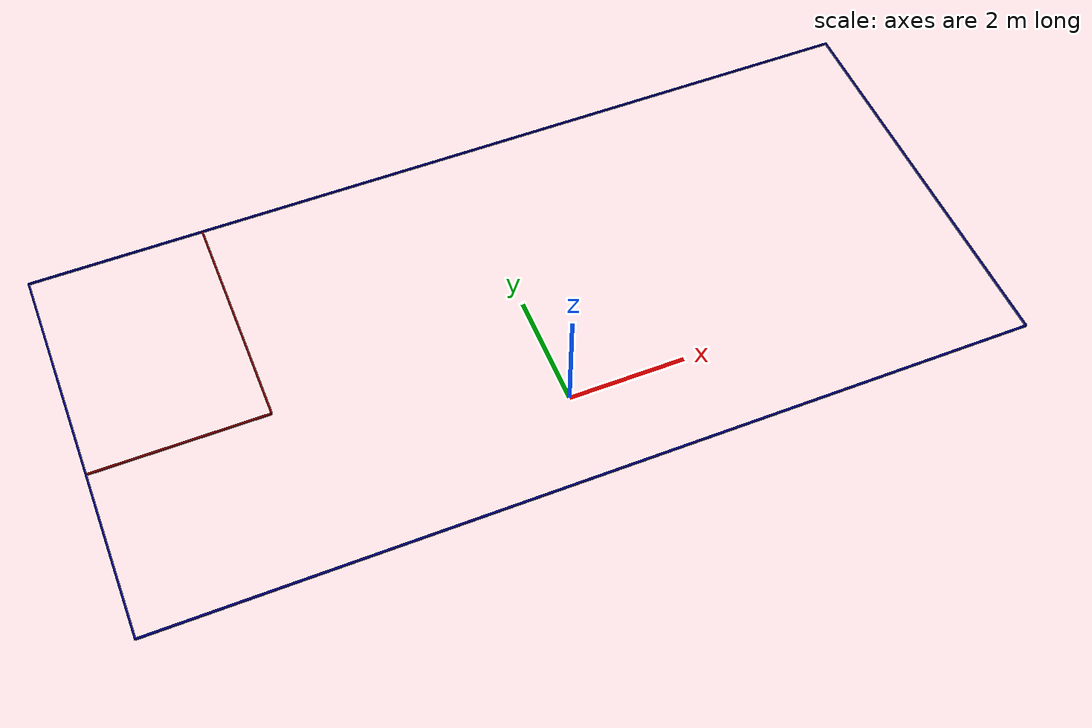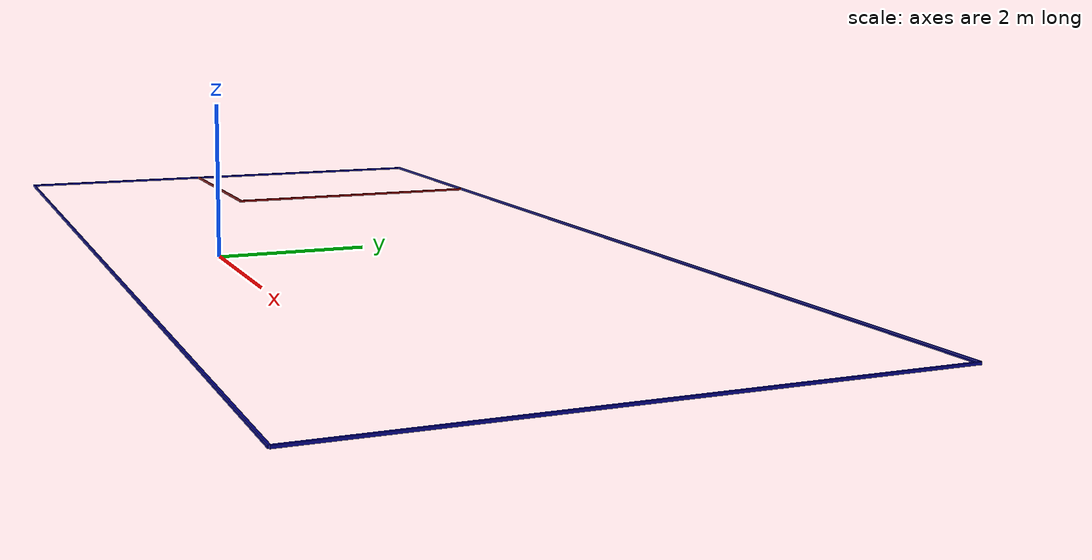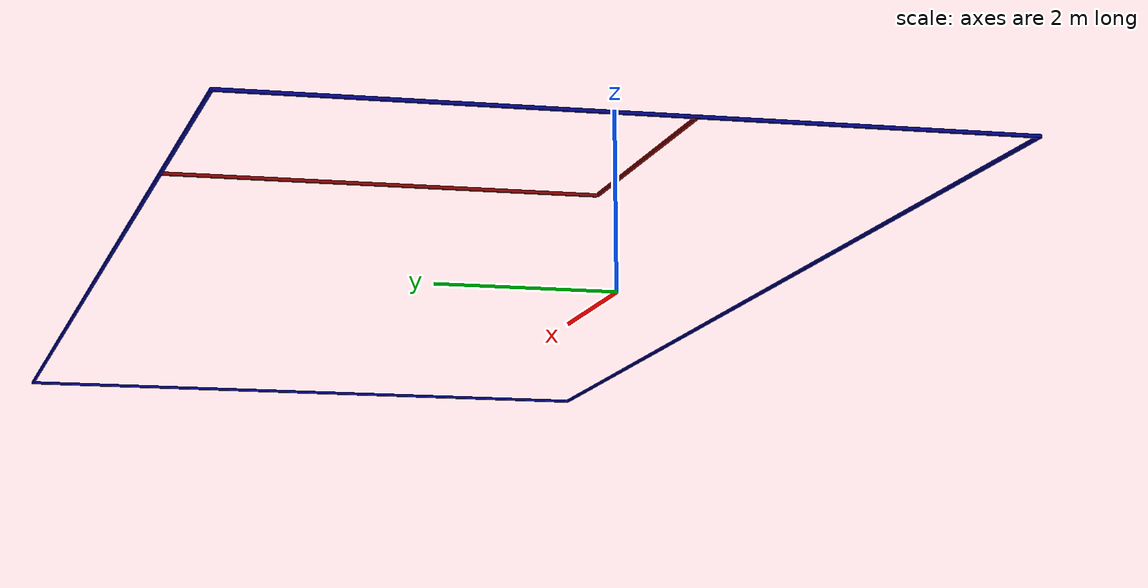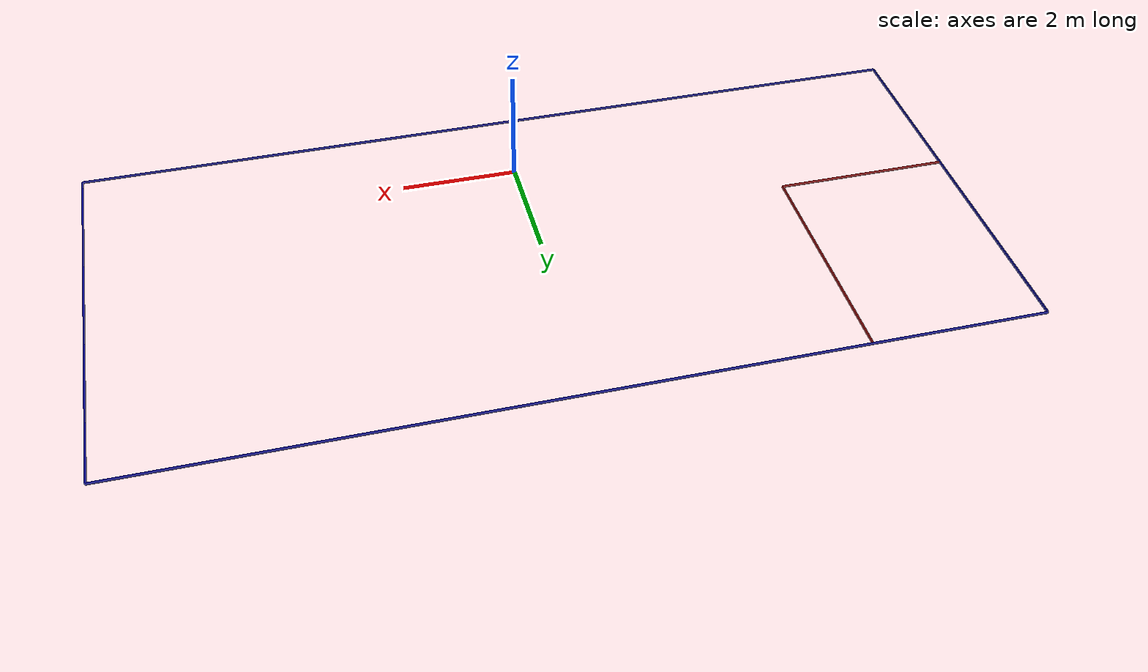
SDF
<?xml version='1.0'?>
<sdf version='1.4'>
  <model name="triple-I">
    <static>true</static>

    <link name='right_side'>
      <pose>0 -1.5 0 0 0 1.5707</pose>
      <collision name='rcollision'>
        <geometry>
         <box>
            <size>0.03 15 0.03</size>
         </box>
        </geometry>
      </collision>

      <visual name='rvisual'>
        <geometry>
          <box>
            <size>0.03 15 0.03</size>
         </box>
        </geometry>
        <material>
          <ambient>0.0 0.0 0.5 1.0</ambient>
          <diffuse>0.0 0.0 0.5 1.0</diffuse>
          <specular>0.0 0.0 0.5 1.0</specular>
          <emissive>0.0 0.0 0.5 1.0</emissive>
        </material>
      </visual>
    </link>

    <link name='left_side'>
      <pose>0 5.5 0 0 0 1.5707</pose>
      <collision name='lcollision'>
        <geometry>
          <box>
            <size>0.03 15 0.03</size>
         </box>
        </geometry>
      </collision>

      <visual name='lvisual'>
        <geometry>
          <box>
            <size>0.03 15 0.03</size>
         </box>
        </geometry>
        <material>
          <ambient>0.0 0.0 0.5 1.0</ambient>
          <diffuse>0.0 0.0 0.5 1.0</diffuse>
          <specular>0.0 0.0 0.5 1.0</specular>
          <emissive>0.0 0.0 0.5 1.0</emissive>
        </material>
      </visual>
    </link>

    <link name='manuevering_side'>
      <pose>7.5 2 0 0 0 0</pose>
      <collision name='mcollision'>
        <geometry>
          <box>
            <size>0.03 7 0.03</size>
         </box>
        </geometry>
      </collision>

      <visual name='mvisual'>
        <geometry>
          <box>
            <size>0.03 7 0.03</size>
         </box>
        </geometry>
        <material>
          <ambient>0.0 0.0 0.5 1.0</ambient>
          <diffuse>0.0 0.0 0.5 1.0</diffuse>
          <specular>0.0 0.0 0.5 1.0</specular>
          <emissive>0.0 0.0 0.5 1.0</emissive>
        </material>
      </visual>
    </link>

    <link name='garage_side'>
      <pose>-7.5 2 0 0 0 0</pose>
      <collision name='gcollision'>
        <geometry>
          <box>
            <size>0.03 7 0.03</size>
         </box>
        </geometry>
      </collision>

      <visual name='gvisual'>
        <geometry>
          <box>
            <size>0.03 7 .03</size>
         </box>
        </geometry>
        <material>
          <ambient>0.0 0.0 0.5 1.0</ambient>
          <diffuse>0.0 0.0 0.5 1.0</diffuse>
          <specular>0.0 0.0 0.5 1.0</specular>
          <emissive>0.0 0.0 0.5 1.0</emissive>
        </material>
      </visual>
    </link>

    <link name='garage_boundary0'>
      <pose>-4.5 3.5 0 0 0 0</pose>

      <visual name='g0visual'>
        <geometry>
          <box>
            <size>0.03 4 0.03</size>
         </box>
        </geometry>
        <material>
          <ambient>0.5 0.0 0 1.0</ambient>
          <diffuse>0.5 0.0 0 1.0</diffuse>
          <specular>0.5 0.0 0 1.0</specular>
          <emissive>0.5 0.0 0 1.0</emissive>
        </material>
      </visual>
    </link>

    <link name='garage_boundary1'>
      <pose>-6 1.5 0 0 0 1.5707</pose>

      <visual name='g1visual'>
        <geometry>
          <box>
            <size>0.03 3 0.03</size>
         </box>
        </geometry>
        <material>
          <ambient>0.5 0.0 0 1.0</ambient>
          <diffuse>0.5 0.0 0 1.0</diffuse>
          <specular>0.5 0.0 0 1.0</specular>
          <emissive>0.5 0.0 0 1.0</emissive>
        </material>
      </visual>
    </link>

    <joint type='fixed' name='gr'>
      <child>right_side</child>
      <parent>garage_side</parent>
    </joint>
    <joint type='fixed' name='gl'>
      <child>left_side</child>
      <parent>garage_side</parent>
    </joint>
    <joint type='fixed' name='mr'>
      <child>right_side</child>
      <parent>manuevering_side</parent>
    </joint>
    <joint type='fixed' name='ml'>
      <child>manuevering_side</child>
      <parent>left_side</parent>
    </joint>

  </model>
</sdf>
